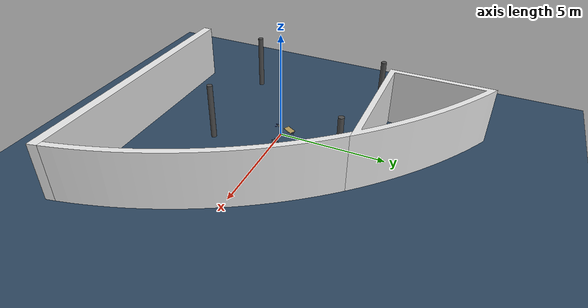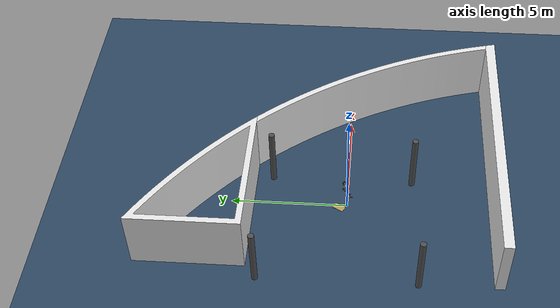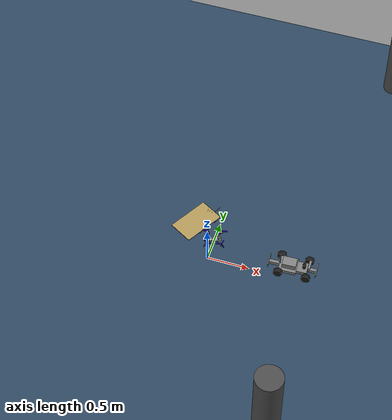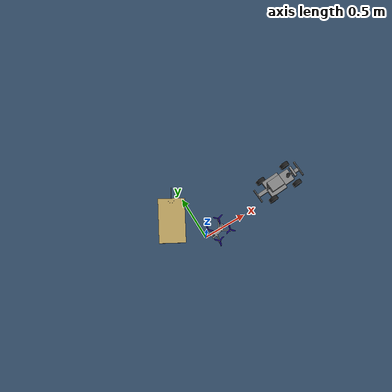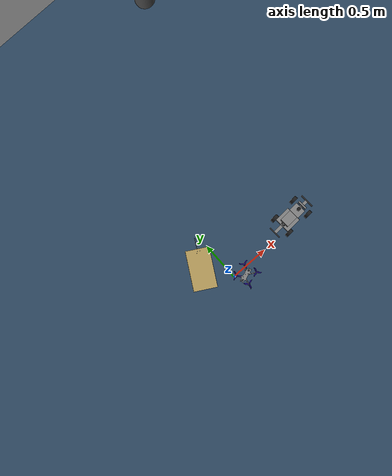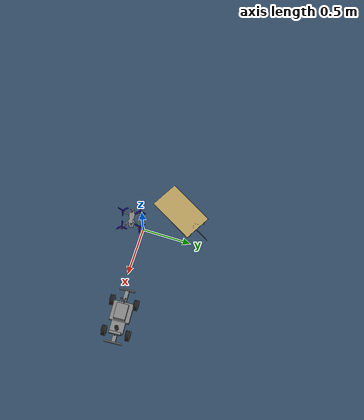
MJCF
<mujoco model="Lagyi">
	<include file="common_assets.xml" />
	<default class="main">
		<default class="lagyi">
			<geom quat="0 0 0.7071 0.7071" rgba="0.9 0.9 0.9 1" />
		</default>
		<default class="pole">
			<geom rgba="0.1 0.1 0.1 1" />
			<default class="pole_top">
				<geom type="cylinder" size="0.022 0.5" pos="0 0 0.5" />
			</default>
			<default class="pole_bottom1">
				<geom type="box" size="0.02 0.205 0.02" quat="0.7071 0 0 0.7071" pos="0 0 0.02" />
				<default class="pole_bottom2">
					<geom quat="1 0 0 0" />
				</default>
			</default>
		</default>
		<default class="landing_zone">
			<geom type="box" pos="0 0 0.01" size="0.1175 0.0975 0.01" rgba="0.8 0.8 0.8 1.0" />
		</default>
	</default>
	<compiler angle="radian" meshdir="" />
	<option timestep="0.001" integrator="implicitfast" />
	<visual>
		<quality shadowsize="4096" />
		<global offwidth="1920" offheight="1200" />
	</visual>
	<asset>
		<mesh file="meshes/crazyflie/cf2_assembly.stl" name="crazyflie" smoothnormal="true" scale="1.5 1.5 1.5" />
		<mesh file="meshes/building/lagyi_cockpit.stl" name="cockpit" smoothnormal="true" scale="0.0085 0.0085 0.0085" />
		<mesh file="meshes/building/lagyi_fal1.stl" name="fal1" smoothnormal="true" scale="0.0085 0.0085 0.0085" />
		<mesh file="meshes/building/lagyi_fal2.stl" name="fal2" smoothnormal="true" scale="0.0085 0.0085 0.0085" />
		<mesh file="meshes/building/lagyi_oszlop1.stl" name="oszlop1" smoothnormal="true" scale="0.0085 0.0085 0.0085" />
		<mesh file="meshes/building/lagyi_oszlop2.stl" name="oszlop2" smoothnormal="true" scale="0.0085 0.0085 0.0085" />
		<mesh file="meshes/building/lagyi_oszlop3.stl" name="oszlop3" smoothnormal="true" scale="0.0085 0.0085 0.0085" />
		<mesh file="meshes/building/lagyi_oszlop4.stl" name="oszlop4" smoothnormal="true" scale="0.0085 0.0085 0.0085" />
		<mesh file="meshes/bucket/Bucket3.obj" name="bucket" smoothnormal="false" scale="0.035 0.035 0.035" />
		<texture type="skybox" builtin="gradient" rgb1=".3 .5 .7" rgb2="0 0 0" width="512" height="512" />
		<texture name="tex-carpet" type="2d" file="textures/carpet_lagyi4.png" />
		<texture name="tex-roundabout" type="2d" file="textures/roundabout.png" />
		<texture name="tex-hospital" type="2d" file="textures/hospital.png" />
		<texture name="tex-post_office" type="2d" file="textures/post_office.png" />
		<texture name="tex-airport" type="2d" file="textures/airport.png" />
		<texture name="tex-parking_lot" type="2d" file="textures/parking_lot.png" />
		<texture name="tex-sztaki" type="2d" file="textures/sztaki.png" />
		<material name="mat-carpet" shininess="0.1" texture="tex-carpet" texuniform="false" />
		<material name="mat-roundabout" reflectance="0.7" texture="tex-roundabout" texuniform="false" />
		<material name="mat-hospital" reflectance="0.7" texrepeat="7.843 7.692" texture="tex-hospital" texuniform="true" />
		<material name="mat-post_office" reflectance="0.7" texrepeat="7.843 7.843" texture="tex-post_office" texuniform="true" />
		<material name="mat-airport" reflectance="0.7" texrepeat="9.524 9.524" texture="tex-airport" texuniform="true" />
		<material name="mat-parking_lot" reflectance="0.7" texrepeat="9.524 8.696" texture="tex-parking_lot" texuniform="true" />
		<material name="mat-sztaki" reflectance="0.7" texrepeat="9.524 9.524" texture="tex-sztaki" texuniform="true" />
		<texture name="grid" type="2d" builtin="checker" width="100" height="100" rgb1=".1 .2 .3" rgb2=".25 .35 .45" />
		<material name="grid" texture="grid" texrepeat="1 1" texuniform="true" reflectance=".05" />
	</asset>
	<worldbody>
		<camera pos="2.867 -5.173 1.776" xyaxes="0.875 0.485 0.000 -0.139 0.252 0.958" />
		<light dir="0 -0.3 -1" diffuse=".9 .9 .9" specular="0.6 0.9 0.6" pos="1 1 15" cutoff="70" />
		<light dir="-.2 1 -.4" diffuse=".9 .9 .9" specular="0.6 0.9 0.6" pos="2 -5 6" cutoff="70" />
		<light dir="-1.0 -1.0 -.4" diffuse=".9 .9 .9" specular="0.6 0.9 0.6" pos="10 10 6" directional="true" cutoff="70" />
		<geom size="20 20 .0005" pos="0 0 -0.00025" type="plane" material="grid" condim="3" />
		<geom name="carpet" size="7.644 7.644 .0005" pos="3.16 1.115 0.00025" quat="0.7071 0 0 0.7071" type="plane" material="mat-carpet" />
		<geom name="roundabout" size="1.5 1.5 .0005" pos="0 0 0.00075" quat="1 0 0 0" type="plane" material="mat-roundabout" condim="3" />
		<geom name="ground" size="20 20 .0050" pos="0 0 0.00125" type="plane" material="grid" condim="3" rgba="0 1 0 0" />
		<body name="lagyi" pos="1.45 -2.8 0" childclass="lagyi">
			<geom name="cockpit" type="mesh" mesh="cockpit" />
			<geom name="fal1" type="mesh" mesh="fal1" />
			<geom name="fal2" type="mesh" mesh="fal2" />
			<geom name="oszlop1" type="mesh" mesh="oszlop1" rgba="0.3 0.3 0.3 1" />
			<geom name="oszlop2" type="mesh" mesh="oszlop2" rgba="0.3 0.3 0.3 1" />
			<geom name="oszlop3" type="mesh" mesh="oszlop3" rgba="0.3 0.3 0.3 1" />
			<geom name="oszlop4" type="mesh" mesh="oszlop4" rgba="0.3 0.3 0.3 1" />
		</body>
		<body name="MocapCar_0" pos="1.002249 0.09183602 0.14860953" quat="-0.9994437098503113 0.005916429217904806 -0.009882212616503239 -0.03129913657903671" mocap="true">
			<geom name="MocapCar_0_chassis_b" type="box" size=".10113 .1016 .02" pos="-.06 0 0" rgba="0.5 0.5 0.5 1" />
			<geom name="MocapCar_0_chassis_f" type="box" size=".06 .07 .02" pos=".10113 0 0" rgba="0.5 0.5 0.5 1" />
			<geom name="MocapCar_0_front" type="box" size=".052388 .02 .02" pos=".2135 0 0" rgba="0.5 0.5 0.5 1" />
			<geom name="MocapCar_0_back" type="box" size=".062488 .02 .02" pos="-.2236 0 0" rgba="0.5 0.5 0.5 1" />
			<geom name="MocapCar_0_front_bumper" type="box" size=".005 .09 .02" pos=".265888 0 0.02" rgba="0.5 0.5 0.5 1" />
			<geom name="MocapCar_0_back_bumper" type="box" size=".005 .08 .02" pos="-.2861 0 0.02" rgba="0.5 0.5 0.5 1" />
			<geom name="MocapCar_0_number" type="cylinder" size=".01984 .03" pos=".12 0 .05" rgba="0.1 0.1 0.1 1.0" />
			<geom name="MocapCar_0_camera" type="box" size=".012 .06 0.02" pos=".18 0 .08" />
			<geom name="MocapCar_0_camera_holder" type="box" size=".012 .008 .02" pos=".18 0 .04" />
			<geom name="MocapCar_0_circuits" type="box" size=".08 .06 .03" pos="-.05 0 .05" rgba="0.5 0.5 0.5 1" />
			<geom name="MocapCar_0_antennal" type="box" size=".007 .004 .06" pos="-.16 -.01 .105" euler="0.2 0 0" rgba=".1 .1 .1 1.0" />
			<geom name="MocapCar_0_antennar" type="box" size=".007 .004 .06" pos="-.16 .01 .105" euler="-0.2 0 0" rgba=".1 .1 .1 1.0" />
			<geom name="MocapCar_0_antenna_holder" type="box" size=".008 .008 .02" pos="-.16 0 .04" rgba=".1 .1 .1 1.0" />
			<geom name="MocapCar_0_wheelfr" type="cylinder" size=".052388 .022225" pos="0.16113 0.122385 0" rgba="0.1 0.1 0.1 1.0" euler="1.571 0 0" />
			<geom name="MocapCar_0_wheelrl" type="cylinder" size=".052388 .022225" pos="-0.16113 0.122385 0" rgba="0.1 0.1 0.1 1.0" euler="1.571 0 0" />
			<geom name="MocapCar_0_wheelfl" type="cylinder" size=".052388 .022225" pos="0.16113 -0.122385 0" rgba="0.1 0.1 0.1 1.0" euler="1.571 0 0" />
			<geom name="MocapCar_0_wheelrr" type="cylinder" size=".052388 .022225" pos="-0.16113 -0.122385 0" rgba="0.1 0.1 0.1 1.0" euler="1.571 0 0" />
		</body>
		<body name="MocapBumblebee_0" pos="0.11465476 -0.07244205 0.5074504" quat="-0.13370124995708466 0.00842184666544199 0.0008581432630307972 0.990985631942749" mocap="true">
			<geom name="MocapBumblebee_0_body" pos="0.0132 0 0" type="mesh" quat="-0.7071067811865475 -0.0 0.0 0.7071067811865476" mesh="bumblebee_body" rgba="0.5 0.5 0.5 1" />
			<body name="MocapBumblebee_0_prop0">
				<joint name="MocapBumblebee_0_prop0" axis="0 0 1" pos="0.091 -0.087 0.036" />
				<geom name="MocapBumblebee_0_prop0" type="mesh" mesh="bumblebee_ccw_prop" pos="0.091 -0.087 0.036" rgba="0.1 0.02 0.5 1.0" />
			</body>
			<body name="MocapBumblebee_0_prop1">
				<joint name="MocapBumblebee_0_prop1" axis="0 0 1" pos="-0.074 -0.087 0.036" />
				<geom name="MocapBumblebee_0_prop1" type="mesh" mesh="bumblebee_cw_prop" pos="-0.074 -0.087 0.036" rgba="0.1 0.02 0.5 1.0" />
			</body>
			<body name="MocapBumblebee_0_prop2">
				<joint name="MocapBumblebee_0_prop2" axis="0 0 1" pos="-0.074 0.087 0.036" />
				<geom name="MocapBumblebee_0_prop2" type="mesh" mesh="bumblebee_ccw_prop" pos="-0.074 0.087 0.036" rgba="0.1 0.02 0.5 1.0" />
			</body>
			<body name="MocapBumblebee_0_prop3">
				<joint name="MocapBumblebee_0_prop3" axis="0 0 1" pos="0.091 0.087 0.036" />
				<geom name="MocapBumblebee_0_prop3" type="mesh" mesh="bumblebee_cw_prop" pos="0.091 0.087 0.036" rgba="0.1 0.02 0.5 1.0" />
			</body>
		</body>
		<body name="MocapHook_0" pos="0.0085 0 0" mocap="true">
			<geom name="MocapHook_0_rod" type="cylinder" fromto="0 0 0  0 0 -0.4" size="0.005" mass="0.0" />
			<body name="MocapHook_0_head" pos="0 0 -0.4" euler="0 3.141592 0">
				<geom type="box" pos="0 0 0.02" size="0.003 0.003 0.02" />
				<geom type="box" pos="0 0.019 0.054" euler="-0.92 0 0" size="0.003 0.003 0.026" />
				<geom type="box" pos="0 0.02 0.0825" euler="0.92 0 0" size="0.003 0.003 0.026" />
				<geom type="box" pos="0 -0.018 0.085" euler="-1.0472 0 0" size="0.003 0.003 0.026" />
			</body>
		</body>
		<body name="MocapTrailer_0" pos="-0.053337738 0.6674512 0.108504325" quat="-0.8621505498886108 -8.133875780913513e-06 -0.006121058948338032 -0.5066152811050415" mocap="true">
			<geom type="cylinder" size="0.0025 0.09" euler="0 1.571 0" pos="-0.09 0 0" />
			<body name="MocapTrailer_0_trailer_front_structure" pos="-0.18 0 0">
				<geom type="box" size="0.0075 0.0965 0.0075" />
				<body pos="0 0.0965 0" name="MocapTrailer_0_trailer_wheelfl">
					<geom type="cylinder" size=".0315 .005" rgba="0.1 0.1 0.1 1.0" euler="1.571 0 0" name="MocapTrailer_0_trailer_wheelfl" />
				</body>
				<body pos="0 -0.0965 0" name="MocapTrailer_0_trailer_wheelfr">
					<geom type="cylinder" size=".0315 .005" rgba="0.1 0.1 0.1 1.0" euler="1.571 0 0" name="MocapTrailer_0_trailer_wheelfr" />
				</body>
				<body name="MocapTrailer_0_trailer_rear_structure">
					<geom type="box" size=".25 .1475 .003" pos="-.21 0 .08" rgba="0.7 0.6 0.35 1.0" euler="0 0.0 0" />
					<geom type="box" size="0.0075 0.0965 0.0075" pos="-0.225 0 0" />
					<geom type="box" size="0.1375 0.07150000000000001 0.0025" pos="-0.1125 0 0.014" rgba="0.9 0.9 0.9 0.2" euler="0 0.0 0" />
					<geom type="cylinder" size="0.0025 0.035" pos=".01 0 0.05" euler="0 0.0 0" />
					<geom type="cylinder" size="0.0025 0.035" pos=".01 -0.03 0.05" euler="0 0.0 0" />
					<geom type="cylinder" size="0.0025 0.035" pos=".01 0.03 0.05" euler="0 0.0 0" />
					<geom type="cylinder" size="0.0025 0.035" pos="-.01 -0.015 0.05" euler="0 0.0 0" />
					<geom type="cylinder" size="0.0025 0.035" pos="-.01 0.015 0.05" euler="0 0.0 0" />
					<geom type="cylinder" size="0.008 0.032" pos="-0.20500000000000002 0 0.045" rgba="0.1 0.1 0.1 1.0" euler="0 0.0 0" />
					<body pos="-0.225 0.0965 0" name="MocapTrailer_0_trailer_wheelrl">
						<geom type="cylinder" size=".0315 .005" rgba="0.1 0.1 0.1 1.0" euler="1.571 0 0" name="MocapTrailer_0_trailer_wheelrl" />
					</body>
					<body pos="-0.225 -0.0965 0" name="MocapTrailer_0_trailer_wheelrr">
						<geom type="cylinder" size=".0315 .005" rgba="0.1 0.1 0.1 1.0" euler="1.571 0 0" name="MocapTrailer_0_trailer_wheelrr" />
					</body>
				</body>
			</body>
		</body>
	</worldbody>
	<actuator />
	<sensor />
</mujoco>

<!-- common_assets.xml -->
<mujoco>
  <asset>
    <mesh file="meshes/payload/payload_simplified.stl" name="payload_simplified" smoothnormal="false" scale="0.00115 0.00115 0.00115"/>

    <mesh file="meshes/crazyflie/cf_body.stl" name="crazyflie_body" smoothnormal="true" scale="1.0452 1.0452 1.0452"/>
    <mesh file="meshes/crazyflie/4_motormounts.stl" name="crazyflie_4_motormounts" smoothnormal="true" scale="1.0452 1.0452 1.0452"/>
    <mesh file="meshes/crazyflie/4_motors.stl" name="crazyflie_4_motors" smoothnormal="true" scale="1.0452 1.0452 1.0452"/>
    <mesh file="meshes/crazyflie/ccw_prop.stl" name="crazyflie_ccw_prop" smoothnormal="true" scale="1.0452 1.0452 1.0452"/>
    <mesh file="meshes/crazyflie/cw_prop.stl" name="crazyflie_cw_prop" smoothnormal="true" scale="1.0452 1.0452 1.0452"/>

    <mesh file="meshes/bumblebee/quad_model_no_prop_simplified.stl" name="bumblebee_body" smoothnormal="true" scale="0.001 0.001 0.001"/>
    <mesh file="meshes/bumblebee/ccw_propeller_simplified.stl" name="bumblebee_ccw_prop" smoothnormal="true" scale="0.001 0.001 0.001"/>
    <mesh file="meshes/bumblebee/cw_propeller_simplified.stl" name="bumblebee_cw_prop" smoothnormal="true" scale="0.001 0.001 0.001"/>

    <texture name="tex_check" builtin="checker" type="2d" width="256" height="256" rgb1=".8 .1 .1" rgb2=".1 .1 .8"/>
    <material name="material_check" texture="tex_check" texrepeat="2 2" texuniform="true"/>
  </asset>
</mujoco>
